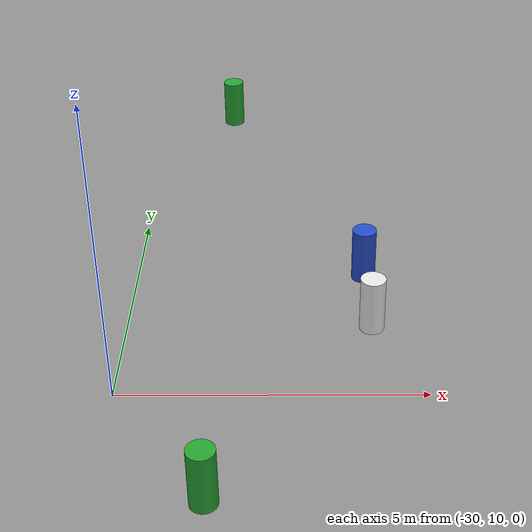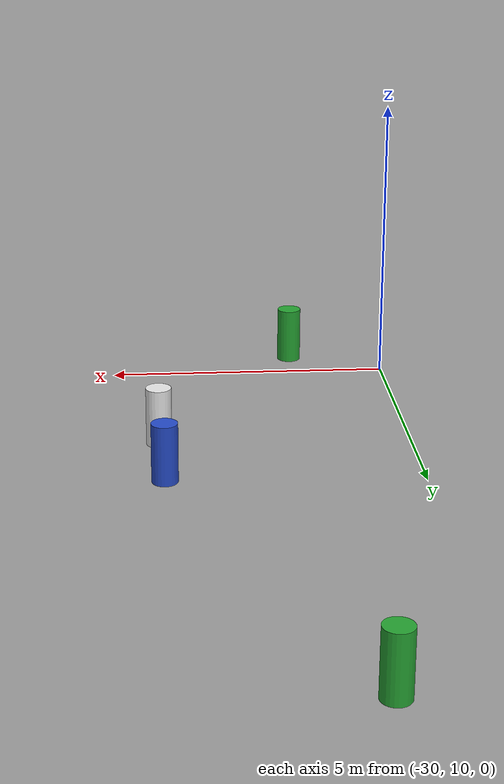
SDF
<sdf version="1.10">
 <world name="IGVC_AutoNav">
  <model name="barrel_10">
   <link name="link">
    <inertial>
     <mass>1</mass>
     <inertia>
      <ixx>0.14583299999999999</ixx>
      <ixy>0</ixy>
      <ixz>0</ixz>
      <iyy>0.14583299999999999</iyy>
      <iyz>0</iyz>
      <izz>0.125</izz>
     </inertia>
    </inertial>
    <visual name="visual">
     <geometry><cylinder><radius>0.222916</radius><length>1.0356700000000001</length></cylinder></geometry>
     <material>
      <script><name>Gazebo/Blue</name><uri>file://media/materials/scripts/gazebo.material</uri></script>
      <shader type="pixel"/>
     </material>
    </visual>
    <collision name="collision">
     <geometry><cylinder><radius>0.222916</radius><length>1.0356700000000001</length></cylinder></geometry>
     <surface>
      <friction>
       <ode><mu>1</mu><mu2>1</mu2><fdir1>0 0 0</fdir1><slip1>0</slip1><slip2>0</slip2></ode>
       <torsional>
        <coefficient>1</coefficient>
        <patch_radius>0</patch_radius>
        <surface_radius>0</surface_radius>
        <use_patch_radius>true</use_patch_radius>
        <ode><slip>0</slip></ode>
       </torsional>
      </friction>
      <bounce><restitution_coefficient>0</restitution_coefficient><threshold>1000000</threshold></bounce>
      <contact>
       <collide_without_contact>false</collide_without_contact>
       <collide_without_contact_bitmask>1</collide_without_contact_bitmask>
       <collide_bitmask>1</collide_bitmask>
       <ode>
        <soft_cfm>0</soft_cfm>
        <soft_erp>0.20000000000000001</soft_erp>
        <kp>10000000000000</kp>
        <kd>1</kd>
        <max_vel>0.01</max_vel>
        <min_depth>0</min_depth>
       </ode>
       <bullet>
        <split_impulse>true</split_impulse>
        <split_impulse_penetration_threshold>-0.01</split_impulse_penetration_threshold>
        <soft_cfm>0</soft_cfm>
        <soft_erp>0.20000000000000001</soft_erp>
        <kp>10000000000000</kp>
        <kd>1</kd>
       </bullet>
      </contact>
     </surface>
    </collision>
   </link>
   <static>false</static>
   <pose>-25.850784301757812 13.89840030670166 0.10622122363706199 -2.3725561040519514e-16 7.8936602894727486e-17 1.0374188059436404e-19</pose>
  </model>
  <model name="barrel_13">
   <link name="link">
    <inertial>
     <mass>1</mass>
     <inertia>
      <ixx>0.14583299999999999</ixx>
      <ixy>0</ixy>
      <ixz>0</ixz>
      <iyy>0.14583299999999999</iyy>
      <iyz>0</iyz>
      <izz>0.125</izz>
     </inertia>
    </inertial>
    <visual name="visual">
     <geometry><cylinder><radius>0.222916</radius><length>1.0356700000000001</length></cylinder></geometry>
     <material>
      <script><name>Gazebo/Green</name><uri>file://media/materials/scripts/gazebo.material</uri></script>
      <shader type="pixel"/>
     </material>
    </visual>
    <collision name="collision">
     <geometry><cylinder><radius>0.222916</radius><length>1.0356700000000001</length></cylinder></geometry>
     <surface>
      <friction>
       <ode><mu>1</mu><mu2>1</mu2><fdir1>0 0 0</fdir1><slip1>0</slip1><slip2>0</slip2></ode>
       <torsional>
        <coefficient>1</coefficient>
        <patch_radius>0</patch_radius>
        <surface_radius>0</surface_radius>
        <use_patch_radius>true</use_patch_radius>
        <ode><slip>0</slip></ode>
       </torsional>
      </friction>
      <bounce><restitution_coefficient>0</restitution_coefficient><threshold>1000000</threshold></bounce>
      <contact>
       <collide_without_contact>false</collide_without_contact>
       <collide_without_contact_bitmask>1</collide_without_contact_bitmask>
       <collide_bitmask>1</collide_bitmask>
       <ode>
        <soft_cfm>0</soft_cfm>
        <soft_erp>0.20000000000000001</soft_erp>
        <kp>10000000000000</kp>
        <kd>1</kd>
        <max_vel>0.01</max_vel>
        <min_depth>0</min_depth>
       </ode>
       <bullet>
        <split_impulse>true</split_impulse>
        <split_impulse_penetration_threshold>-0.01</split_impulse_penetration_threshold>
        <soft_cfm>0</soft_cfm>
        <soft_erp>0.20000000000000001</soft_erp>
        <kp>10000000000000</kp>
        <kd>1</kd>
       </bullet>
      </contact>
     </surface>
    </collision>
   </link>
   <static>false</static>
   <pose>-28.592302322387695 20.560400009155273 0.10600714913253106 1.8420373447517376e-16 -3.2789498737238188e-18 -1.278068026831369e-18</pose>
  </model>
  <model name="barrel_15">
   <link name="link">
    <inertial>
     <mass>1</mass>
     <inertia>
      <ixx>0.14583299999999999</ixx>
      <ixy>0</ixy>
      <ixz>0</ixz>
      <iyy>0.14583299999999999</iyy>
      <iyz>0</iyz>
      <izz>0.125</izz>
     </inertia>
    </inertial>
    <visual name="visual">
     <geometry><cylinder><radius>0.222916</radius><length>1.0356700000000001</length></cylinder></geometry>
     <material>
      <script><name>Gazebo/White</name><uri>file://media/materials/scripts/gazebo.material</uri></script>
      <shader type="pixel"/>
     </material>
    </visual>
    <collision name="collision">
     <geometry><cylinder><radius>0.222916</radius><length>1.0356700000000001</length></cylinder></geometry>
     <surface>
      <friction>
       <ode><mu>1</mu><mu2>1</mu2><fdir1>0 0 0</fdir1><slip1>0</slip1><slip2>0</slip2></ode>
       <torsional>
        <coefficient>1</coefficient>
        <patch_radius>0</patch_radius>
        <surface_radius>0</surface_radius>
        <use_patch_radius>true</use_patch_radius>
        <ode><slip>0</slip></ode>
       </torsional>
      </friction>
      <bounce><restitution_coefficient>0</restitution_coefficient><threshold>1000000</threshold></bounce>
      <contact>
       <collide_without_contact>false</collide_without_contact>
       <collide_without_contact_bitmask>1</collide_without_contact_bitmask>
       <collide_bitmask>1</collide_bitmask>
       <ode>
        <soft_cfm>0</soft_cfm>
        <soft_erp>0.20000000000000001</soft_erp>
        <kp>10000000000000</kp>
        <kd>1</kd>
        <max_vel>0.01</max_vel>
        <min_depth>0</min_depth>
       </ode>
       <bullet>
        <split_impulse>true</split_impulse>
        <split_impulse_penetration_threshold>-0.01</split_impulse_penetration_threshold>
        <soft_cfm>0</soft_cfm>
        <soft_erp>0.20000000000000001</soft_erp>
        <kp>10000000000000</kp>
        <kd>1</kd>
       </bullet>
      </contact>
     </surface>
    </collision>
   </link>
   <static>false</static>
   <pose>-25.783918380737305 12.307399749755859 0.10629118058315268 -2.3549194196413882e-16 -7.2279924073208308e-17 -1.8686154239813113e-19</pose>
  </model>
  <model name="barrel_23">
   <link name="link">
    <inertial>
     <mass>1</mass>
     <inertia>
      <ixx>0.14583299999999999</ixx>
      <ixy>0</ixy>
      <ixz>0</ixz>
      <iyy>0.14583299999999999</iyy>
      <iyz>0</iyz>
      <izz>0.125</izz>
     </inertia>
    </inertial>
    <visual name="visual">
     <geometry><cylinder><radius>0.222916</radius><length>1.0356700000000001</length></cylinder></geometry>
     <material>
      <script><name>Gazebo/Green</name><uri>file://media/materials/scripts/gazebo.material</uri></script>
      <shader type="pixel"/>
     </material>
    </visual>
    <collision name="collision">
     <geometry><cylinder><radius>0.222916</radius><length>1.0356700000000001</length></cylinder></geometry>
     <surface>
      <friction>
       <ode><mu>1</mu><mu2>1</mu2><fdir1>0 0 0</fdir1><slip1>0</slip1><slip2>0</slip2></ode>
       <torsional>
        <coefficient>1</coefficient>
        <patch_radius>0</patch_radius>
        <surface_radius>0</surface_radius>
        <use_patch_radius>true</use_patch_radius>
        <ode><slip>0</slip></ode>
       </torsional>
      </friction>
      <bounce><restitution_coefficient>0</restitution_coefficient><threshold>1000000</threshold></bounce>
      <contact>
       <collide_without_contact>false</collide_without_contact>
       <collide_without_contact_bitmask>1</collide_without_contact_bitmask>
       <collide_bitmask>1</collide_bitmask>
       <ode>
        <soft_cfm>0</soft_cfm>
        <soft_erp>0.20000000000000001</soft_erp>
        <kp>10000000000000</kp>
        <kd>1</kd>
        <max_vel>0.01</max_vel>
        <min_depth>0</min_depth>
       </ode>
       <bullet>
        <split_impulse>true</split_impulse>
        <split_impulse_penetration_threshold>-0.01</split_impulse_penetration_threshold>
        <soft_cfm>0</soft_cfm>
        <soft_erp>0.20000000000000001</soft_erp>
        <kp>10000000000000</kp>
        <kd>1</kd>
       </bullet>
      </contact>
     </surface>
    </collision>
   </link>
   <static>false</static>
   <pose>-28.454685211181641 8.1344699859619141 0.10606422389878933 -7.5327246992345499e-17 3.8921383445271201e-17 -4.0529536450749593e-19</pose>
  </model>
 </world>
</sdf>
